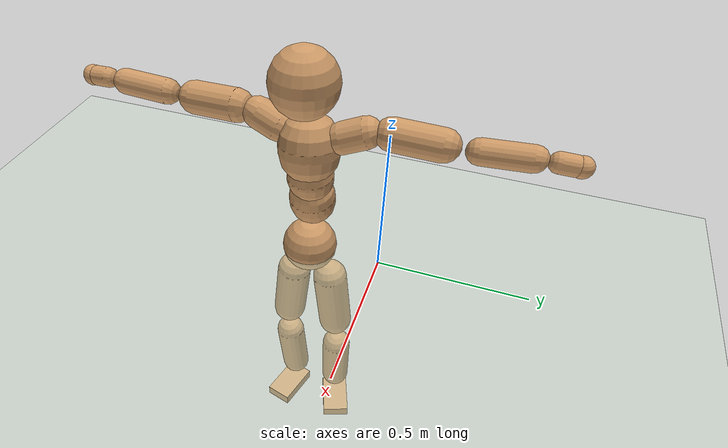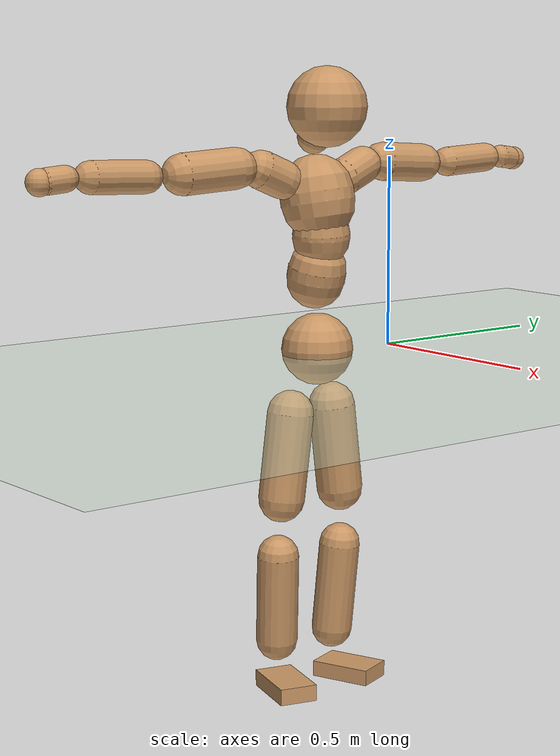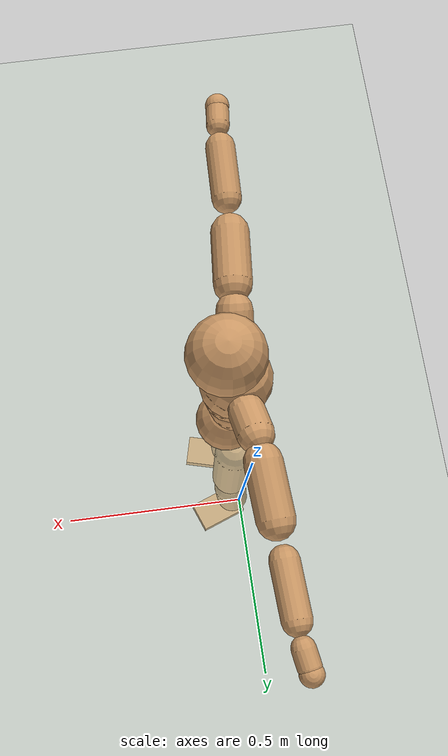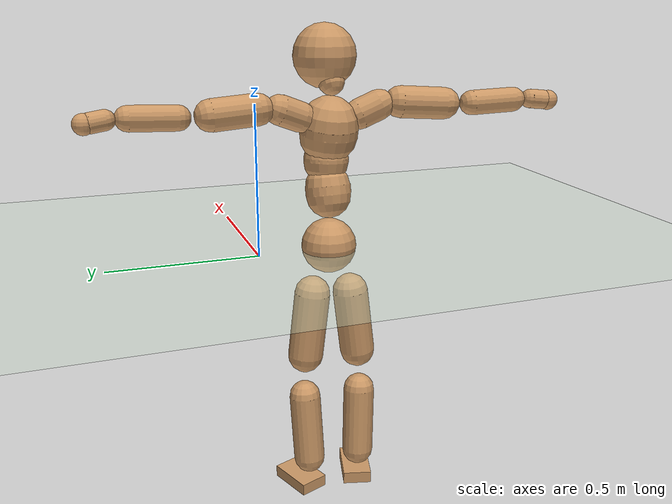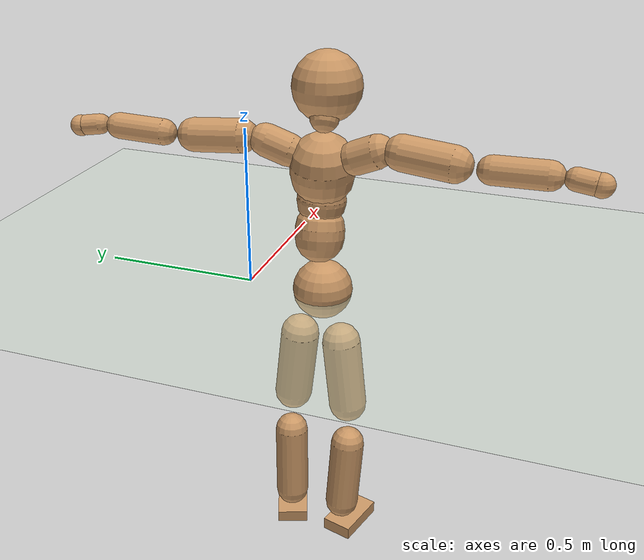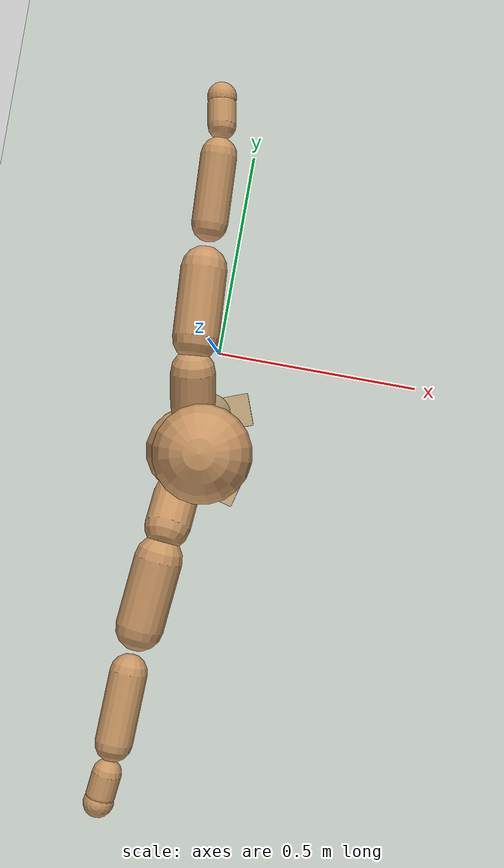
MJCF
<mujoco model="humanoid">
  <compiler coordinate="local" angle="radian"/>
  <default>
    <joint damping="0.0" armature="0.01" stiffness="0.0" limited="true"/>
    <geom conaffinity="1" condim="3" contype="7" margin="0.001" rgba="0.8 0.6 .4 1"/>
  </default>
  <asset>
    <texture type="skybox" builtin="gradient" rgb1=".4 .5 .6" rgb2="0 0 0" width="100" height="100"/>
    <texture builtin="flat" height="1278" mark="cross" markrgb="1 1 1" name="texgeom" random="0.01" rgb1="0.8 0.6 0.4" rgb2="0.8 0.6 0.4" type="cube" width="127"/>
    <texture builtin="checker" height="100" name="texplane" rgb1="0 0 0" rgb2="0.8 0.8 0.8" type="2d" width="100"/>
    <material name="MatPlane" reflectance="0.5" shininess="1" specular="1" texrepeat="60 60" texture="texplane"/>
    <material name="geom" texture="texgeom" texuniform="true"/>
  </asset>
  <worldbody>
    <light cutoff="100" diffuse="1 1 1" dir="-0 0 -1.3" directional="true" exponent="1" pos="0 0 1.3" specular=".1 .1 .1"/>
    <geom conaffinity="1" condim="3" name="floor" pos="0 0 0" rgba="0.8 0.9 0.8 1" size="100 100 .2" type="plane" material="MatPlane"/>
    <body name="Pelvis" pos="0.0012 -0.2449 0.0126">
      <freejoint name="Pelvis"/>
      <geom type="sphere" contype="1" conaffinity="1" density="500" size="0.0937" pos="0.0000 0.0000 0.0000" name="Pelvis"/>
      <body name="L_Hip" pos="-0.024 0.0591 -0.0832">
        <joint name="L_Hip_x" type="hinge" pos="0 0 0" axis="1 0 0" stiffness="800" damping="80" armature="0.02" range="-180.0000 180.0000"/>
        <joint name="L_Hip_y" type="hinge" pos="0 0 0" axis="0 1 0" stiffness="800" damping="80" armature="0.02" range="-180.0000 180.0000"/>
        <joint name="L_Hip_z" type="hinge" pos="0 0 0" axis="0 0 1" stiffness="800" damping="80" armature="0.02" range="-180.0000 180.0000"/>
        <geom type="capsule" contype="1" conaffinity="1" density="500" fromto="0.0006 0.0088 -0.0767 0.0025 0.0351 -0.3068" size="0.0612" name="L_Hip"/>
        <body name="L_Knee" pos="0.0031 0.0439 -0.3835">
          <joint name="L_Knee_x" type="hinge" pos="0 0 0" axis="1 0 0" stiffness="800" damping="80" armature="0.02" range="-180.0000 180.0000"/>
          <joint name="L_Knee_y" type="hinge" pos="0 0 0" axis="0 1 0" stiffness="800" damping="80" armature="0.02" range="-180.0000 180.0000"/>
          <joint name="L_Knee_z" type="hinge" pos="0 0 0" axis="0 0 1" stiffness="800" damping="80" armature="0.02" range="-180.0000 180.0000"/>
          <geom type="capsule" contype="1" conaffinity="1" density="500" fromto="-0.0075 -0.0026 -0.0805 -0.0302 -0.0105 -0.3219" size="0.0546" name="L_Knee"/>
          <body name="L_Ankle" pos="-0.0377 -0.0131 -0.4024">
            <joint name="L_Ankle_x" type="hinge" pos="0 0 0" axis="1 0 0" stiffness="800" damping="80" armature="0.02" range="-180.0000 180.0000"/>
            <joint name="L_Ankle_y" type="hinge" pos="0 0 0" axis="0 1 0" stiffness="800" damping="80" armature="0.02" range="-180.0000 180.0000"/>
            <joint name="L_Ankle_z" type="hinge" pos="0 0 0" axis="0 0 1" stiffness="800" damping="80" armature="0.02" range="-180.0000 180.0000"/>
            <geom type="box" contype="1" conaffinity="1" density="500" pos="0.0578 0.0217 -0.0291" size="0.0823 0.0516 0.0209" quat="0.9840 0.0000 0.0000 0.1783" name="L_Ankle"/>
            <body name="L_Toe" pos="0.1157 0.0434 -0.0581">
              <joint name="L_Toe_x" type="hinge" pos="0 0 0" axis="1 0 0" stiffness="500" damping="50" armature="0.02" range="-180.0000 180.0000"/>
              <joint name="L_Toe_y" type="hinge" pos="0 0 0" axis="0 1 0" stiffness="500" damping="50" armature="0.02" range="-180.0000 180.0000"/>
              <joint name="L_Toe_z" type="hinge" pos="0 0 0" axis="0 0 1" stiffness="500" damping="50" armature="0.02" range="-180.0000 180.0000"/>
              <geom type="box" contype="1" conaffinity="1" density="500" pos="0.0000 0.0000 0.0299" size="0.001 0.0024 0.0011" quat="0.9831 0.0000 0.0000 0.1829" name="L_Toe"/>
            </body>
          </body>
        </body>
      </body>
      <body name="R_Hip" pos="-0.0211 -0.062 -0.0906">
        <joint name="R_Hip_x" type="hinge" pos="0 0 0" axis="1 0 0" stiffness="800" damping="80" armature="0.02" range="-180.0000 180.0000"/>
        <joint name="R_Hip_y" type="hinge" pos="0 0 0" axis="0 1 0" stiffness="800" damping="80" armature="0.02" range="-180.0000 180.0000"/>
        <joint name="R_Hip_z" type="hinge" pos="0 0 0" axis="0 0 1" stiffness="800" damping="80" armature="0.02" range="-180.0000 180.0000"/>
        <geom type="capsule" contype="1" conaffinity="1" density="500" fromto="-0.0016 -0.0090 -0.0759 -0.0063 -0.0360 -0.3036" size="0.0608" name="R_Hip"/>
        <body name="R_Knee" pos="-0.0079 -0.0449 -0.3795">
          <joint name="R_Knee_x" type="hinge" pos="0 0 0" axis="1 0 0" stiffness="800" damping="80" armature="0.02" range="-180.0000 180.0000"/>
          <joint name="R_Knee_y" type="hinge" pos="0 0 0" axis="0 1 0" stiffness="800" damping="80" armature="0.02" range="-180.0000 180.0000"/>
          <joint name="R_Knee_z" type="hinge" pos="0 0 0" axis="0 0 1" stiffness="800" damping="80" armature="0.02" range="-180.0000 180.0000"/>
          <geom type="capsule" contype="1" conaffinity="1" density="500" fromto="-0.0069 0.0036 -0.0794 -0.0277 0.0143 -0.3177" size="0.055" name="R_Knee"/>
          <body name="R_Ankle" pos="-0.0346 0.0179 -0.3972">
            <joint name="R_Ankle_x" type="hinge" pos="0 0 0" axis="1 0 0" stiffness="800" damping="80" armature="0.02" range="-180.0000 180.0000"/>
            <joint name="R_Ankle_y" type="hinge" pos="0 0 0" axis="0 1 0" stiffness="800" damping="80" armature="0.02" range="-180.0000 180.0000"/>
            <joint name="R_Ankle_z" type="hinge" pos="0 0 0" axis="0 0 1" stiffness="800" damping="80" armature="0.02" range="-180.0000 180.0000"/>
            <geom type="box" contype="1" conaffinity="1" density="500" pos="0.0621 -0.0163 -0.0308" size="0.0866 0.0505 0.0217" quat="0.9918 0.0000 0.0000 -0.1278" name="R_Ankle"/>
            <body name="R_Toe" pos="0.1242 -0.0325 -0.0615">
              <joint name="R_Toe_x" type="hinge" pos="0 0 0" axis="1 0 0" stiffness="500" damping="50" armature="0.02" range="-180.0000 180.0000"/>
              <joint name="R_Toe_y" type="hinge" pos="0 0 0" axis="0 1 0" stiffness="500" damping="50" armature="0.02" range="-180.0000 180.0000"/>
              <joint name="R_Toe_z" type="hinge" pos="0 0 0" axis="0 0 1" stiffness="500" damping="50" armature="0.02" range="-180.0000 180.0000"/>
              <geom type="box" contype="1" conaffinity="1" density="500" pos="0.0000 0.0000 0.0326" size="0.001 0.0025 0.0012" quat="0.9930 0.0000 0.0000 -0.1185" name="R_Toe"/>
            </body>
          </body>
        </body>
      </body>
      <body name="Torso" pos="-0.028 0.0041 0.1227">
        <joint name="Torso_x" type="hinge" pos="0 0 0" axis="1 0 0" stiffness="1000" damping="100" armature="0.02" range="-180.0000 180.0000"/>
        <joint name="Torso_y" type="hinge" pos="0 0 0" axis="0 1 0" stiffness="1000" damping="100" armature="0.02" range="-180.0000 180.0000"/>
        <joint name="Torso_z" type="hinge" pos="0 0 0" axis="0 0 1" stiffness="1000" damping="100" armature="0.02" range="-180.0000 180.0000"/>
        <geom type="capsule" contype="1" conaffinity="1" density="500" fromto="0.0203 0.0025 0.0860 0.0135 0.0017 0.0573" size="0.0758" name="Torso"/>
        <body name="Spine" pos="0.0338 0.0042 0.1433">
          <joint name="Spine_x" type="hinge" pos="0 0 0" axis="1 0 0" stiffness="1000" damping="100" armature="0.02" range="-180.0000 180.0000"/>
          <joint name="Spine_y" type="hinge" pos="0 0 0" axis="0 1 0" stiffness="1000" damping="100" armature="0.02" range="-180.0000 180.0000"/>
          <joint name="Spine_z" type="hinge" pos="0 0 0" axis="0 0 1" stiffness="1000" damping="100" armature="0.02" range="-180.0000 180.0000"/>
          <geom type="capsule" contype="1" conaffinity="1" density="500" fromto="0.0022 -0.0018 0.0344 0.0015 -0.0012 0.0229" size="0.0749" name="Spine"/>
          <body name="Chest" pos="0.0037 -0.003 0.0574">
            <joint name="Chest_x" type="hinge" pos="0 0 0" axis="1 0 0" stiffness="1000" damping="100" armature="0.02" range="-180.0000 180.0000"/>
            <joint name="Chest_y" type="hinge" pos="0 0 0" axis="0 1 0" stiffness="1000" damping="100" armature="0.02" range="-180.0000 180.0000"/>
            <joint name="Chest_z" type="hinge" pos="0 0 0" axis="0 0 1" stiffness="1000" damping="100" armature="0.02" range="-180.0000 180.0000"/>
            <geom type="capsule" contype="1" conaffinity="1" density="500" fromto="-0.0131 -0.0053 0.0846 -0.0087 -0.0036 0.0564" size="0.0969" name="Chest"/>
            <body name="Neck" pos="-0.0272 -0.013 0.2054">
              <joint name="Neck_x" type="hinge" pos="0 0 0" axis="1 0 0" stiffness="500" damping="50" armature="0.02" range="-180.0000 180.0000"/>
              <joint name="Neck_y" type="hinge" pos="0 0 0" axis="0 1 0" stiffness="500" damping="50" armature="0.02" range="-180.0000 180.0000"/>
              <joint name="Neck_z" type="hinge" pos="0 0 0" axis="0 0 1" stiffness="500" damping="50" armature="0.02" range="-180.0000 180.0000"/>
              <geom type="capsule" contype="1" conaffinity="1" density="500" fromto="0.0110 0.0019 0.0192 0.0439 0.0074 0.0767" size="0.0436" name="Neck"/>
              <body name="Head" pos="0.0549 0.0093 0.0959">
                <joint name="Head_x" type="hinge" pos="0 0 0" axis="1 0 0" stiffness="500" damping="50" armature="0.02" range="-180.0000 180.0000"/>
                <joint name="Head_y" type="hinge" pos="0 0 0" axis="0 1 0" stiffness="500" damping="50" armature="0.02" range="-180.0000 180.0000"/>
                <joint name="Head_z" type="hinge" pos="0 0 0" axis="0 0 1" stiffness="500" damping="50" armature="0.02" range="-180.0000 180.0000"/>
                <geom type="sphere" contype="1" conaffinity="1" density="500" size="0.1032" pos="0.0000 0.0000 0.0000" name="Head"/>
              </body>
            </body>
            <body name="L_Thorax" pos="-0.0172 0.0702 0.1088">
              <joint name="L_Thorax_x" type="hinge" pos="0 0 0" axis="1 0 0" stiffness="500" damping="50" armature="0.02" range="-180.0000 180.0000"/>
              <joint name="L_Thorax_y" type="hinge" pos="0 0 0" axis="0 1 0" stiffness="500" damping="50" armature="0.02" range="-180.0000 180.0000"/>
              <joint name="L_Thorax_z" type="hinge" pos="0 0 0" axis="0 0 1" stiffness="500" damping="50" armature="0.02" range="-180.0000 180.0000"/>
              <geom type="capsule" contype="1" conaffinity="1" density="500" fromto="-0.0036 0.0235 0.0091 -0.0143 0.0938 0.0366" size="0.0492" name="L_Thorax"/>
              <body name="L_Shoulder" pos="-0.0179 0.1173 0.0457">
                <joint name="L_Shoulder_x" type="hinge" pos="0 0 0" axis="1 0 0" stiffness="500" damping="50" armature="0.02" range="-720.0000 720.0000"/>
                <joint name="L_Shoulder_y" type="hinge" pos="0 0 0" axis="0 1 0" stiffness="500" damping="50" armature="0.02" range="-720.0000 720.0000"/>
                <joint name="L_Shoulder_z" type="hinge" pos="0 0 0" axis="0 0 1" stiffness="500" damping="50" armature="0.02" range="-720.0000 720.0000"/>
                <geom type="capsule" contype="1" conaffinity="1" density="500" fromto="-0.0031 0.0498 -0.0032 -0.0124 0.1991 -0.0127" size="0.0509" name="L_Shoulder"/>
                <body name="L_Elbow" pos="-0.0155 0.2489 -0.0159">
                  <joint name="L_Elbow_x" type="hinge" pos="0 0 0" axis="1 0 0" stiffness="500" damping="50" armature="0.02" range="-720.0000 720.0000"/>
                  <joint name="L_Elbow_y" type="hinge" pos="0 0 0" axis="0 1 0" stiffness="500" damping="50" armature="0.02" range="-720.0000 720.0000"/>
                  <joint name="L_Elbow_z" type="hinge" pos="0 0 0" axis="0 0 1" stiffness="500" damping="50" armature="0.02" range="-720.0000 720.0000"/>
                  <geom type="capsule" contype="1" conaffinity="1" density="500" fromto="-0.0020 0.0491 0.0020 -0.0079 0.1962 0.0082" size="0.0396" name="L_Elbow"/>
                  <body name="L_Wrist" pos="-0.0098 0.2453 0.0102">
                    <joint name="L_Wrist_x" type="hinge" pos="0 0 0" axis="1 0 0" stiffness="300" damping="30" armature="0.02" range="-180.0000 180.0000"/>
                    <joint name="L_Wrist_y" type="hinge" pos="0 0 0" axis="0 1 0" stiffness="300" damping="30" armature="0.02" range="-180.0000 180.0000"/>
                    <joint name="L_Wrist_z" type="hinge" pos="0 0 0" axis="0 0 1" stiffness="300" damping="30" armature="0.02" range="-180.0000 180.0000"/>
                    <geom type="capsule" contype="1" conaffinity="1" density="500" fromto="-0.0028 0.0156 -0.0019 -0.0112 0.0622 -0.0078" size="0.031" name="L_Wrist"/>
                    <body name="L_Hand" pos="-0.014 0.0778 -0.0097">
                      <joint name="L_Hand_x" type="hinge" pos="0 0 0" axis="1 0 0" stiffness="300" damping="30" armature="0.02" range="-180.0000 180.0000"/>
                      <joint name="L_Hand_y" type="hinge" pos="0 0 0" axis="0 1 0" stiffness="300" damping="30" armature="0.02" range="-180.0000 180.0000"/>
                      <joint name="L_Hand_z" type="hinge" pos="0 0 0" axis="0 0 1" stiffness="300" damping="30" armature="0.02" range="-180.0000 180.0000"/>
                      <geom type="sphere" contype="1" conaffinity="1" density="500" size="0.0321" pos="0.0000 0.0000 0.0000" name="L_Hand"/>
                    </body>
                  </body>
                </body>
              </body>
            </body>
            <body name="R_Thorax" pos="-0.0211 -0.0839 0.1087">
              <joint name="R_Thorax_x" type="hinge" pos="0 0 0" axis="1 0 0" stiffness="500" damping="50" armature="0.02" range="-180.0000 180.0000"/>
              <joint name="R_Thorax_y" type="hinge" pos="0 0 0" axis="0 1 0" stiffness="500" damping="50" armature="0.02" range="-180.0000 180.0000"/>
              <joint name="R_Thorax_z" type="hinge" pos="0 0 0" axis="0 0 1" stiffness="500" damping="50" armature="0.02" range="-180.0000 180.0000"/>
              <geom type="capsule" contype="1" conaffinity="1" density="500" fromto="-0.0014 -0.0222 0.0095 -0.0058 -0.0888 0.0379" size="0.05" name="R_Thorax"/>
              <body name="R_Shoulder" pos="-0.0072 -0.111 0.0474">
                <joint name="R_Shoulder_x" type="hinge" pos="0 0 0" axis="1 0 0" stiffness="500" damping="50" armature="0.02" range="-720.0000 720.0000"/>
                <joint name="R_Shoulder_y" type="hinge" pos="0 0 0" axis="0 1 0" stiffness="500" damping="50" armature="0.02" range="-720.0000 720.0000"/>
                <joint name="R_Shoulder_z" type="hinge" pos="0 0 0" axis="0 0 1" stiffness="500" damping="50" armature="0.02" range="-720.0000 720.0000"/>
                <geom type="capsule" contype="1" conaffinity="1" density="500" fromto="-0.0050 -0.0504 -0.0032 -0.0199 -0.2017 -0.0129" size="0.0527" name="R_Shoulder"/>
                <body name="R_Elbow" pos="-0.0249 -0.2521 -0.0162">
                  <joint name="R_Elbow_x" type="hinge" pos="0 0 0" axis="1 0 0" stiffness="500" damping="50" armature="0.02" range="-720.0000 720.0000"/>
                  <joint name="R_Elbow_y" type="hinge" pos="0 0 0" axis="0 1 0" stiffness="500" damping="50" armature="0.02" range="-720.0000 720.0000"/>
                  <joint name="R_Elbow_z" type="hinge" pos="0 0 0" axis="0 0 1" stiffness="500" damping="50" armature="0.02" range="-720.0000 720.0000"/>
                  <geom type="capsule" contype="1" conaffinity="1" density="500" fromto="-0.0015 -0.0511 0.0016 -0.0060 -0.2044 0.0064" size="0.0412" name="R_Elbow"/>
                  <body name="R_Wrist" pos="-0.0075 -0.2555 0.008">
                    <joint name="R_Wrist_x" type="hinge" pos="0 0 0" axis="1 0 0" stiffness="300" damping="30" armature="0.02" range="-180.0000 180.0000"/>
                    <joint name="R_Wrist_y" type="hinge" pos="0 0 0" axis="0 1 0" stiffness="300" damping="30" armature="0.02" range="-180.0000 180.0000"/>
                    <joint name="R_Wrist_z" type="hinge" pos="0 0 0" axis="0 0 1" stiffness="300" damping="30" armature="0.02" range="-180.0000 180.0000"/>
                    <geom type="capsule" contype="1" conaffinity="1" density="500" fromto="-0.0018 -0.0164 -0.0016 -0.0074 -0.0656 -0.0063" size="0.0324" name="R_Wrist"/>
                    <body name="R_Hand" pos="-0.0092 -0.082 -0.0079">
                      <joint name="R_Hand_x" type="hinge" pos="0 0 0" axis="1 0 0" stiffness="300" damping="30" armature="0.02" range="-180.0000 180.0000"/>
                      <joint name="R_Hand_y" type="hinge" pos="0 0 0" axis="0 1 0" stiffness="300" damping="30" armature="0.02" range="-180.0000 180.0000"/>
                      <joint name="R_Hand_z" type="hinge" pos="0 0 0" axis="0 0 1" stiffness="300" damping="30" armature="0.02" range="-180.0000 180.0000"/>
                      <geom type="sphere" contype="1" conaffinity="1" density="500" size="0.0335" pos="0.0000 0.0000 0.0000" name="R_Hand"/>
                    </body>
                  </body>
                </body>
              </body>
            </body>
          </body>
        </body>
      </body>
    </body>
  </worldbody>
  <actuator>
    <motor name="L_Hip_x" joint="L_Hip_x" gear="500"/>
    <motor name="L_Hip_y" joint="L_Hip_y" gear="500"/>
    <motor name="L_Hip_z" joint="L_Hip_z" gear="500"/>
    <motor name="L_Knee_x" joint="L_Knee_x" gear="500"/>
    <motor name="L_Knee_y" joint="L_Knee_y" gear="500"/>
    <motor name="L_Knee_z" joint="L_Knee_z" gear="500"/>
    <motor name="L_Ankle_x" joint="L_Ankle_x" gear="500"/>
    <motor name="L_Ankle_y" joint="L_Ankle_y" gear="500"/>
    <motor name="L_Ankle_z" joint="L_Ankle_z" gear="500"/>
    <motor name="L_Toe_x" joint="L_Toe_x" gear="500"/>
    <motor name="L_Toe_y" joint="L_Toe_y" gear="500"/>
    <motor name="L_Toe_z" joint="L_Toe_z" gear="500"/>
    <motor name="R_Hip_x" joint="R_Hip_x" gear="500"/>
    <motor name="R_Hip_y" joint="R_Hip_y" gear="500"/>
    <motor name="R_Hip_z" joint="R_Hip_z" gear="500"/>
    <motor name="R_Knee_x" joint="R_Knee_x" gear="500"/>
    <motor name="R_Knee_y" joint="R_Knee_y" gear="500"/>
    <motor name="R_Knee_z" joint="R_Knee_z" gear="500"/>
    <motor name="R_Ankle_x" joint="R_Ankle_x" gear="500"/>
    <motor name="R_Ankle_y" joint="R_Ankle_y" gear="500"/>
    <motor name="R_Ankle_z" joint="R_Ankle_z" gear="500"/>
    <motor name="R_Toe_x" joint="R_Toe_x" gear="500"/>
    <motor name="R_Toe_y" joint="R_Toe_y" gear="500"/>
    <motor name="R_Toe_z" joint="R_Toe_z" gear="500"/>
    <motor name="Torso_x" joint="Torso_x" gear="500"/>
    <motor name="Torso_y" joint="Torso_y" gear="500"/>
    <motor name="Torso_z" joint="Torso_z" gear="500"/>
    <motor name="Spine_x" joint="Spine_x" gear="500"/>
    <motor name="Spine_y" joint="Spine_y" gear="500"/>
    <motor name="Spine_z" joint="Spine_z" gear="500"/>
    <motor name="Chest_x" joint="Chest_x" gear="500"/>
    <motor name="Chest_y" joint="Chest_y" gear="500"/>
    <motor name="Chest_z" joint="Chest_z" gear="500"/>
    <motor name="Neck_x" joint="Neck_x" gear="500"/>
    <motor name="Neck_y" joint="Neck_y" gear="500"/>
    <motor name="Neck_z" joint="Neck_z" gear="500"/>
    <motor name="Head_x" joint="Head_x" gear="500"/>
    <motor name="Head_y" joint="Head_y" gear="500"/>
    <motor name="Head_z" joint="Head_z" gear="500"/>
    <motor name="L_Thorax_x" joint="L_Thorax_x" gear="500"/>
    <motor name="L_Thorax_y" joint="L_Thorax_y" gear="500"/>
    <motor name="L_Thorax_z" joint="L_Thorax_z" gear="500"/>
    <motor name="L_Shoulder_x" joint="L_Shoulder_x" gear="500"/>
    <motor name="L_Shoulder_y" joint="L_Shoulder_y" gear="500"/>
    <motor name="L_Shoulder_z" joint="L_Shoulder_z" gear="500"/>
    <motor name="L_Elbow_x" joint="L_Elbow_x" gear="500"/>
    <motor name="L_Elbow_y" joint="L_Elbow_y" gear="500"/>
    <motor name="L_Elbow_z" joint="L_Elbow_z" gear="500"/>
    <motor name="L_Wrist_x" joint="L_Wrist_x" gear="500"/>
    <motor name="L_Wrist_y" joint="L_Wrist_y" gear="500"/>
    <motor name="L_Wrist_z" joint="L_Wrist_z" gear="500"/>
    <motor name="L_Hand_x" joint="L_Hand_x" gear="500"/>
    <motor name="L_Hand_y" joint="L_Hand_y" gear="500"/>
    <motor name="L_Hand_z" joint="L_Hand_z" gear="500"/>
    <motor name="R_Thorax_x" joint="R_Thorax_x" gear="500"/>
    <motor name="R_Thorax_y" joint="R_Thorax_y" gear="500"/>
    <motor name="R_Thorax_z" joint="R_Thorax_z" gear="500"/>
    <motor name="R_Shoulder_x" joint="R_Shoulder_x" gear="500"/>
    <motor name="R_Shoulder_y" joint="R_Shoulder_y" gear="500"/>
    <motor name="R_Shoulder_z" joint="R_Shoulder_z" gear="500"/>
    <motor name="R_Elbow_x" joint="R_Elbow_x" gear="500"/>
    <motor name="R_Elbow_y" joint="R_Elbow_y" gear="500"/>
    <motor name="R_Elbow_z" joint="R_Elbow_z" gear="500"/>
    <motor name="R_Wrist_x" joint="R_Wrist_x" gear="500"/>
    <motor name="R_Wrist_y" joint="R_Wrist_y" gear="500"/>
    <motor name="R_Wrist_z" joint="R_Wrist_z" gear="500"/>
    <motor name="R_Hand_x" joint="R_Hand_x" gear="500"/>
    <motor name="R_Hand_y" joint="R_Hand_y" gear="500"/>
    <motor name="R_Hand_z" joint="R_Hand_z" gear="500"/>
  </actuator>
  <contact>
    <exclude body1="Torso" body2="Chest"/>
    <exclude body1="Head" body2="Chest"/>
    <exclude body1="R_Knee" body2="R_Toe"/>
    <exclude body1="R_Knee" body2="L_Ankle"/>
    <exclude body1="R_Knee" body2="L_Toe"/>
    <exclude body1="L_Knee" body2="L_Toe"/>
    <exclude body1="L_Knee" body2="R_Ankle"/>
    <exclude body1="L_Knee" body2="R_Toe"/>
    <exclude body1="L_Shoulder" body2="Chest"/>
    <exclude body1="R_Shoulder" body2="Chest"/>
  </contact>
  <sensor/>
  <size njmax="700" nconmax="700"/>
</mujoco>
